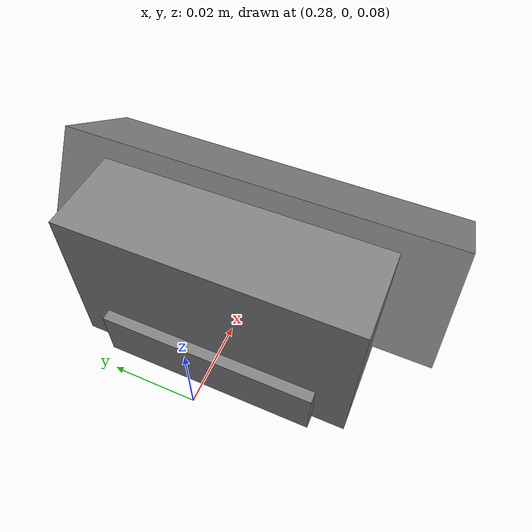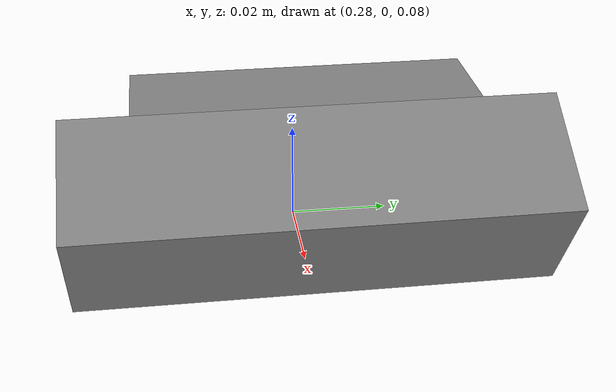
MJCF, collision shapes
<?xml version="1.0"?>
<mujoco model="go2 d435i attachment">
  <!--
    Standalone D435i attachment. simulate attaches front_camera below base_link
    at load time so the same camera can be used with every Go2 scene.
  -->
  <compiler angle="radian" meshdir="assets"/>
  <asset>
    <mesh name="d435i_camera_base_mesh" file="camera_base.stl"/>
    <mesh name="d435i_camera_mount_mesh" file="camera_mount_thick.stl"/>
    <mesh name="d435i_camera_mesh" file="camera_d435.stl"/>
  </asset>
  <worldbody>
    <frame name="d435i_attachment">
      <body name="front_camera" pos="0.32715 -0.00003 0.04297">
        <body name="camera_base" pos="-0.0316 0 0.0339" quat="0.7071067811865476 0 0 0.7071067811865475">
          <inertial pos="1.364400223e-18 -5.562413413e-04 2.356938510e-03" mass="0.0314" fullinertia="1.214172919e-06 8.009097700e-06 8.861365594e-06 -2.331631992e-23 1.700091419e-22 1.021177911e-07"/>
          <geom name="camera_base_visual" type="mesh" pos="0 -1.20037e-05 0" mesh="d435i_camera_base_mesh" rgba="0.1 0.1 0.1 1" contype="0" conaffinity="0" group="2"/>
          <geom name="camera_base_collision" type="box" pos="0 0 0.0065" size="0.025 0.01 0.0065" group="5"/>
          <body name="camera_mount_thick" pos="0 -0.002512 0.0335">
            <inertial pos="-5.134669429e-13 -1.162369557e-04 -1.584734567e-02" mass="0.0100" fullinertia="1.144543784e-06 4.391012828e-06 3.572996742e-06 1.462295345e-14 2.867429344e-16 1.042743628e-07"/>
            <geom name="camera_mount_thick_visual" type="mesh" mesh="d435i_camera_mount_mesh" rgba="0.1 0.1 0.1 1" contype="0" conaffinity="0" group="2"/>
            <geom name="camera_mount_thick_collision" type="box" pos="0 0 -0.013" size="0.0325 0.01 0.0195" group="5"/>
          </body>
          <body name="camera_d435" pos="0 -0.0309136 0.0179006" quat="0.4848103581772784 0.8746192980971886 0 0">
            <inertial pos="2.466172292e-04 -6.261757478e-05 -1.305330896e-02" mass="0.0923" fullinertia="8.506823180e-06 6.013371832e-05 5.957544869e-05 -8.061363717e-10 -1.976959681e-07 -2.697969134e-09"/>
            <geom name="camera_d435_visual" type="mesh" mesh="d435i_camera_mesh" rgba="0.917647 0.917647 0.917647 1" contype="0" conaffinity="0" group="2"/>
            <geom name="camera_d435_collision" type="box" pos="0 0 -0.0125" size="0.045 0.0125 0.0125" group="5"/>
            <!-- MuJoCo cameras look along local -Z. This matches the training model. -->
            <camera name="front_depth_camera" pos="0 0 0" quat="-8.326672684688674e-17 1.110223024625157e-16 0.9999999999996442 8.43716540965822e-07" resolution="640 360" sensorsize="640 360" focalpixel="325.6343657510801 324.72859594885625" principalpixel="0 0"/>
          </body>
        </body>
      </body>
    </frame>
  </worldbody>
</mujoco>
